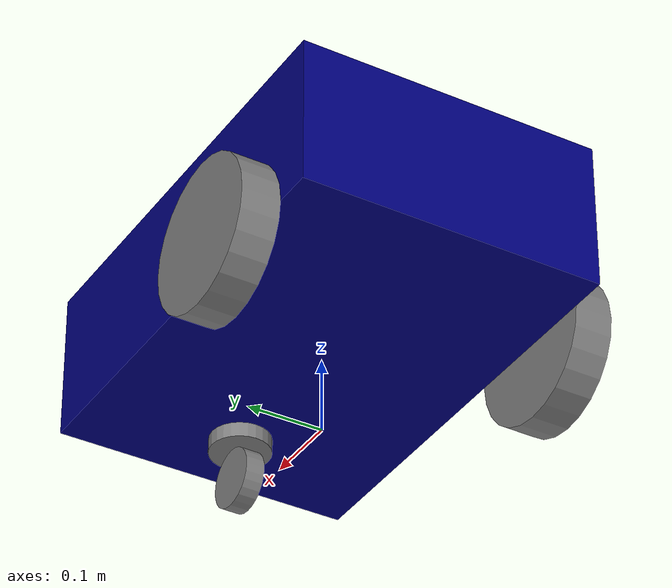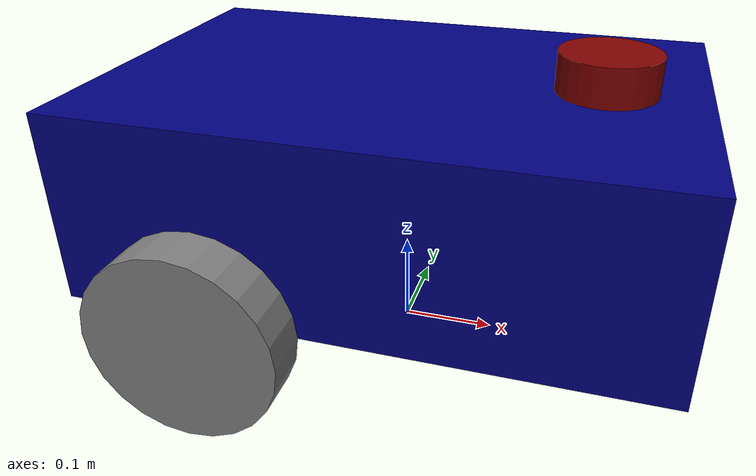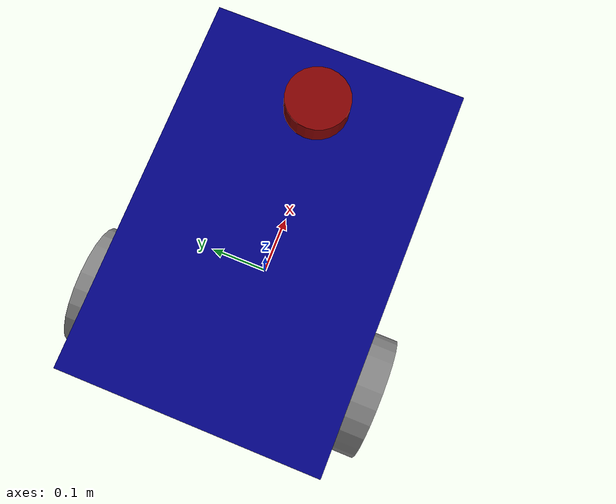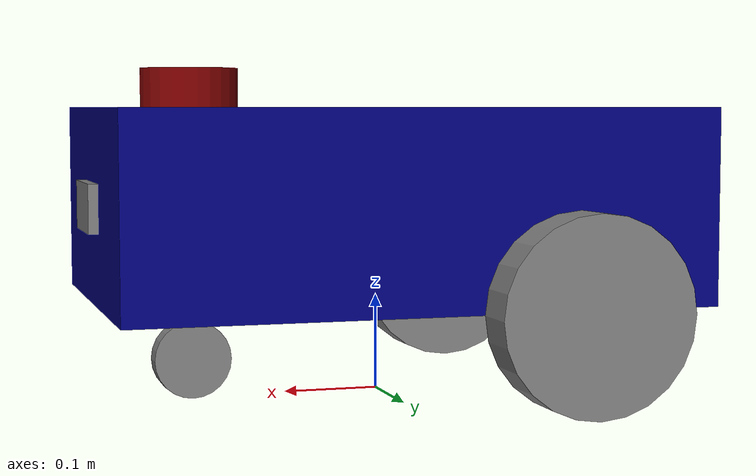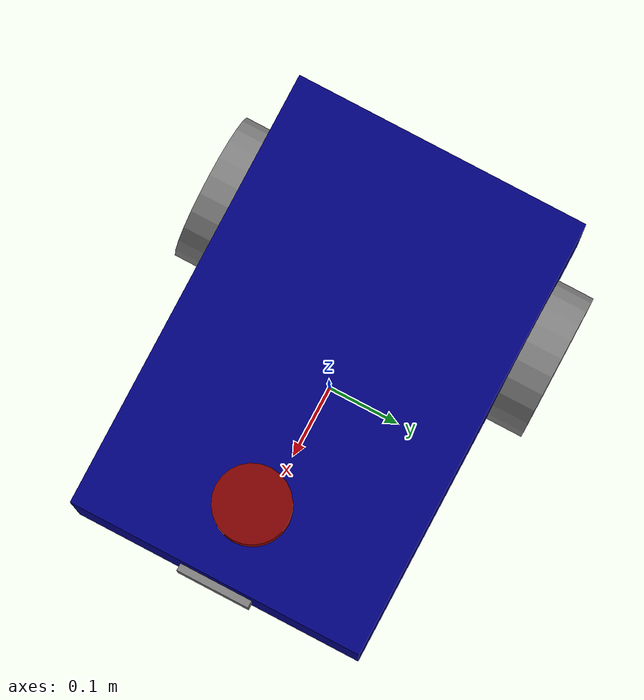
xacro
<?xml version="1.0"?>
<!-- The first thing we need to do is a robot TYPE -->
<robot name="my_robot" xmlns:xacro="http://www.ros.org/wiki/xacro"> <!-- here is the starting point -->
    <!-- Always add this when use xacro -->
    <!-- Here we can add LINKS, JOINTS, and other elements to define the robot -->

    <xacro:include filename="common_properties_sim.xacro"/>
    <xacro:include filename="mobile_base_sim.xacro"/>

    <xacro:include filename="lidar_sim.xacro"/>
    <xacro:include filename="mobile_base_gazebo_sim.xacro"/>

    <xacro:include filename="camera_sim.xacro"/>

</robot> <!-- Here is the end of the robot TYPE -->

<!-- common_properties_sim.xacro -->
<robot xmlns:xacro="http://www.ros.org/wiki/xacro">
    <!-- Materials -->
    <material name="blue">
        <color rgba="0.0 0.0 0.5 1.0"/>
    </material>
    <material name="red">
        <color rgba="0.5 0.0 0.0 1.0"/>
    </material>
    <material name="green">
        <color rgba="0.0 0.5 0.0 1.0"/>
    </material>
    <material name="black">
        <color rgba="0.0 0.0 0.0 1.0"/>
    </material>
    <material name="pink">
        <color rgba="1.0 0.75 0.8 1.0"/>
    </material>
    <material name="gray">
        <color rgba="0.5 0.5 0.5 1"/>
    </material>

    <!-- box_inertia: called with m, x, y, z, o_xyz, o_rpy -->
    <xacro:macro name="box_inertia" params="m x y z o_xyz o_rpy">
        <inertial>
            <origin xyz="${o_xyz}" rpy="${o_rpy}"/>
            <mass value="${m}"/>
            <inertia ixx="${(1/12.0) * m * (z*z + y*y)}" ixy="0" ixz="0"
                     iyy="${(1/12.0) * m * (z*z + x*x)}" iyz="0"
                     izz="${(1/12.0) * m * (x*x + y*y)}"/>
        </inertial>
    </xacro:macro>

    <!-- cylinder_inertia: called with m, r, l, o_xyz, o_rpy -->
    <xacro:macro name="cylinder_inertia" params="m r l o_xyz o_rpy">
        <inertial>
            <origin xyz="${o_xyz}" rpy="${o_rpy}"/>
            <mass value="${m}"/>
            <inertia ixx="${(1/12.0) * m * (3*r*r + l*l)}" ixy="0" ixz="0"
                     iyy="${(1/12.0) * m * (3*r*r + l*l)}" iyz="0"
                     izz="${0.5 * m * r*r}"/>
        </inertial>
    </xacro:macro>

    <!-- sphere_inertia: called with m, r, o_xyz, o_rpy -->
    <xacro:macro name="sphere_inertia" params="m r o_xyz o_rpy">
        <inertial>
            <origin xyz="${o_xyz}" rpy="${o_rpy}"/>
            <mass value="${m}"/>
            <inertia ixx="${(2/5.0) * m * r*r}" ixy="0" ixz="0"
                     iyy="${(2/5.0) * m * r*r}" iyz="0"
                     izz="${(2/5.0) * m * r*r}"/>
        </inertial>
    </xacro:macro>

</robot>

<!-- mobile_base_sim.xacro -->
<robot xmlns:xacro="http://www.ros.org/wiki/xacro">

    <!-- Defining some variables -->
    <xacro:property name="base_length" value="0.6"/>
    <xacro:property name="base_width" value="0.4"/>
    <xacro:property name="base_height" value="0.2"/>
    <xacro:property name="wheel_radius" value="0.1"/>
    <xacro:property name="wheel_width" value="0.05"/>
    <xacro:property name="caster_wheel_radius" value="${wheel_radius / 2.0}"/>

    <!-- FIXED -->
    <xacro:property name="caster_wheel_support_radius" value="0.04"/>
    <xacro:property name="caster_wheel_real_radius" value="${caster_wheel_radius * 0.8}"/>
    <xacro:property name="caster_wheel_support_length" value="${wheel_radius - 2.0 * caster_wheel_real_radius}"/>
    <xacro:property name="caster_wheel_width" value="${wheel_width * 0.5}"/>
    <!-- ============= Defining the links of the robot ============== -->
    <link name="base_link">
        <visual>
            <geometry>
                <box size="${base_length} ${base_width} ${base_height}" />
            </geometry>
            <origin xyz="0 0 ${base_height / 2.0}" rpy="0 0 0"/>
            <material name="blue"/>
        </visual>
        <collision>
            <geometry>
                <box size="${base_length} ${base_width} ${base_height}" />
            </geometry>
            <origin xyz="0 0 ${base_height / 2.0}" rpy="0 0 0"/>
        </collision>
        <!-- FIX: l→x, w→y, h→z; xyz/rpy renamed to o_xyz/o_rpy -->
        <xacro:box_inertia m="5.0" x="${base_length}" y="${base_width}" z="${base_height}"
                           o_xyz="0 0 ${base_height / 2.0}" o_rpy="0 0 0"/>
    </link>

    <xacro:macro name="wheel_link" params="prefix">
        <link name="${prefix}_wheel_link">
            <visual>
                <geometry>
                    <cylinder radius="${wheel_radius}" length="${wheel_width}" />
                </geometry>
                <origin xyz="0 0 0" rpy="${pi / 2.0} 0 0"/>
                <material name="gray"/>
            </visual>
            <collision>
                <geometry>
                    <cylinder radius="${wheel_radius}" length="${wheel_width}" />
                </geometry>
                <origin xyz="0 0 0" rpy="${pi / 2.0} 0 0"/>
            </collision>
            <!-- FIX: h→l; xyz/rpy renamed to o_xyz/o_rpy -->
            <xacro:cylinder_inertia m="1.0" r="${wheel_radius}" l="${wheel_width}"
                                    o_xyz="0 0 0" o_rpy="${pi / 2.0} 0 0"/>
        </link>
    </xacro:macro>

    <xacro:wheel_link prefix="right"/>
    <xacro:wheel_link prefix="left"/>

    <link name="caster_wheel_link_support">
        <visual>
            <geometry>
                <cylinder radius="${caster_wheel_support_radius}" length="${caster_wheel_support_length}" />
            </geometry>
            <origin xyz="0 0 0" rpy="0 0 0"/>
            <material name="gray"/>
        </visual>
        <collision>
            <geometry>
                <cylinder radius="${caster_wheel_support_radius}" length="${caster_wheel_support_length}" />
            </geometry>
            <origin xyz="0 0 0" rpy="0 0 0"/>
        </collision>
        <!-- FIX: h→l; xyz/rpy renamed to o_xyz/o_rpy -->
        <xacro:cylinder_inertia m="0.05" r="${caster_wheel_support_radius}" l="${caster_wheel_support_length}"
                                o_xyz="0 0 0" o_rpy="0 0 0"/>
    </link>

    <link name="caster_wheel_real_link">
        <visual>
            <geometry>
                <cylinder radius="${caster_wheel_real_radius}" length="${caster_wheel_width}" />
            </geometry>
            <origin xyz="0 0 0" rpy="0 0 0"/>
            <material name="gray"/>
        </visual>
        <collision>
            <geometry>
                <cylinder radius="${caster_wheel_real_radius}" length="${caster_wheel_width}" />
            </geometry>
            <origin xyz="0 0 0" rpy="0 0 0"/>
        </collision>
        <!-- FIX: h→l; xyz/rpy renamed to o_xyz/o_rpy -->
        <xacro:cylinder_inertia m="0.1" r="${caster_wheel_real_radius}" l="${caster_wheel_width}"
                                o_xyz="0 0 0" o_rpy="0 0 0"/>
    </link>

    <link name="base_footprint" />

    <!-- ============= Defining the joints of the robot ============== -->
    <joint name="base_left_wheel_joint" type="continuous">
        <parent link="base_link"/>
        <child link="left_wheel_link"/>
        <origin xyz="${-base_length / 4.0} ${base_width / 2.0 + wheel_width / 2.0} 0" rpy="0 0 0"/>
        <axis xyz="0 1 0"/>
    </joint>

    <joint name="base_right_wheel_joint" type="continuous">
        <parent link="base_link"/>
        <child link="right_wheel_link"/>
        <origin xyz="${-base_length / 4.0} ${-base_width / 2.0 - wheel_width / 2.0} 0" rpy="0 0 0"/>
        <axis xyz="0 1 0"/>
    </joint>

    <joint name="base_caster_wheel_support_joint" type="continuous">
        <parent link="base_link"/>
        <child link="caster_wheel_link_support"/>
        <origin xyz="${base_length / 3.0} 0 ${-caster_wheel_support_length / 2.0}" rpy="0 0 0"/>
        <axis xyz="0 0 1"/>
    </joint>

    <joint name="base_caster_wheel_real_joint" type="continuous">
        <parent link="caster_wheel_link_support"/>
        <child link="caster_wheel_real_link"/>
        <origin xyz="0 0 ${-caster_wheel_support_length / 2.0 - caster_wheel_real_radius}" rpy="1.57 1.57 0"/>
        <axis xyz="0 0 1"/>
    </joint>

    <joint name="base_joint" type="fixed">
        <parent link="base_footprint"/>
        <child link="base_link"/>
        <origin xyz="0 0 ${wheel_radius}" rpy="0 0 0"/>
    </joint>

</robot>

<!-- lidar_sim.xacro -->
<robot name="my_robot" xmlns:xacro="http://www.ros.org/wiki/xacro">

    <joint name="laser_joint" type="fixed">
        <parent link="base_link"/>
        <child link="laser_link"/>
        <origin xyz="0.2 0 ${base_height + 0.02}" rpy="0 0 0"/>
    </joint>

    <link name="laser_link">
        <visual>
            <geometry>
                <cylinder radius="0.05" length="0.04"/>
            </geometry>
            <origin xyz="0 0 0" rpy="0 0 0"/>
            <material name="red"/>
        </visual>
        <collision>
            <geometry>
                <cylinder radius="0.05" length="0.04"/>
            </geometry>
            <origin xyz="0 0 0" rpy="0 0 0"/>
        </collision>
        <!-- FIX: h→l; xyz/rpy renamed to o_xyz/o_rpy -->
        <xacro:cylinder_inertia m="0.1" r="0.05" l="0.04"
                                o_xyz="0 0 0" o_rpy="0 0 0"/>
    </link>

</robot>

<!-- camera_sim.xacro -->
<robot xmlns:xacro="http://www.ros.org/wiki/xacro">

    <xacro:property name="camera_length" value="0.01"/>
    <xacro:property name="camera_width" value="0.1"/>
    <xacro:property name="camera_height" value="0.05"/>

    <link name="camera_link">
        <visual>
            <geometry>
                <box size="${camera_length} ${camera_width} ${camera_height}"/>
            </geometry>
            <material name="gray"/>
        </visual>
        <collision>
            <geometry>
                <box size="${camera_length} ${camera_width} ${camera_height}"/>
            </geometry>
        </collision>
        <!-- FIX: l→x, w→y, h→z; xyz/rpy renamed to o_xyz/o_rpy -->
        <xacro:box_inertia m="0.1"
                           x="${camera_length}"
                           y="${camera_width}"
                           z="${camera_height}"
                           o_xyz="0 0 0"
                           o_rpy="0 0 0"/>
    </link>

    <joint name="base_camera_joint" type="fixed">
        <parent link="base_link"/>
        <child link="camera_link"/>
        <origin xyz="${(base_length + camera_length) / 2} 0 ${base_height/2}" rpy="0 0 0"/>
    </joint>

    <gazebo reference="camera_link">
        <material>Gazebo/Red</material>
        <sensor name="camera_sensor" type="camera">
            <pose>0 0 0 0 0 0</pose>
            <visualize>true</visualize>
            <update_rate>10.0</update_rate>
            <plugin name="camera_controller" filename="libgazebo_ros_camera.so">
                <frame_name>camera_link</frame_name>
            </plugin>
        </sensor>
    </gazebo>

</robot>
